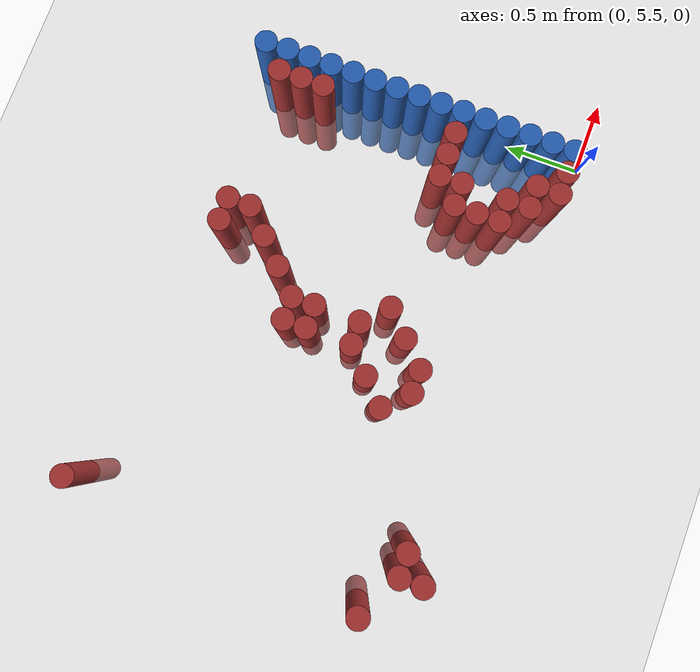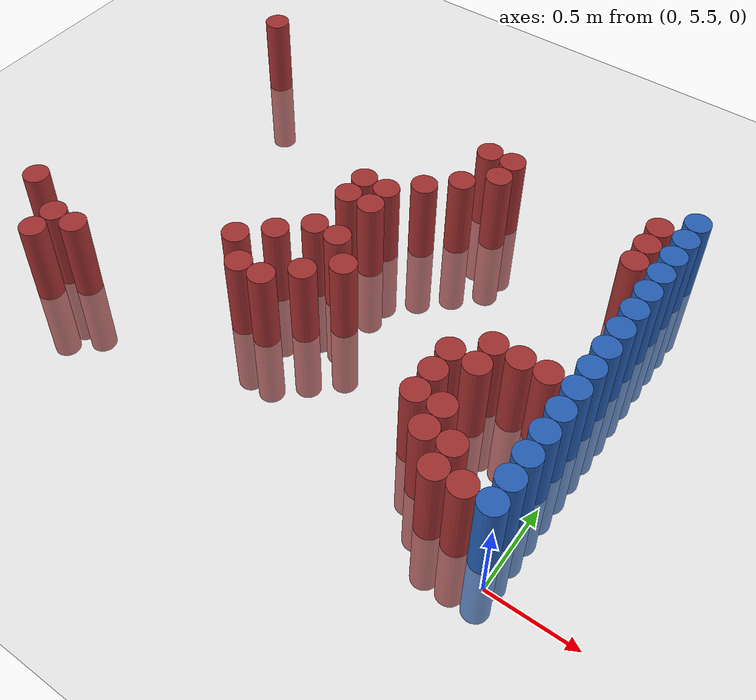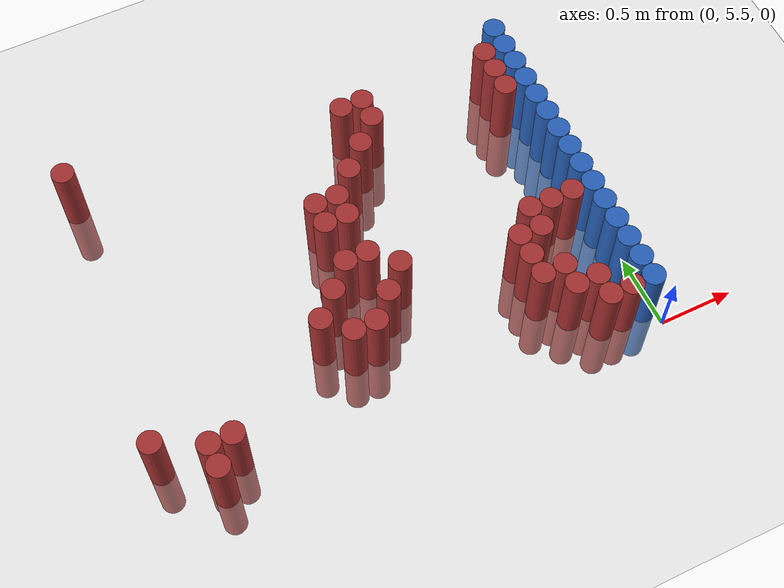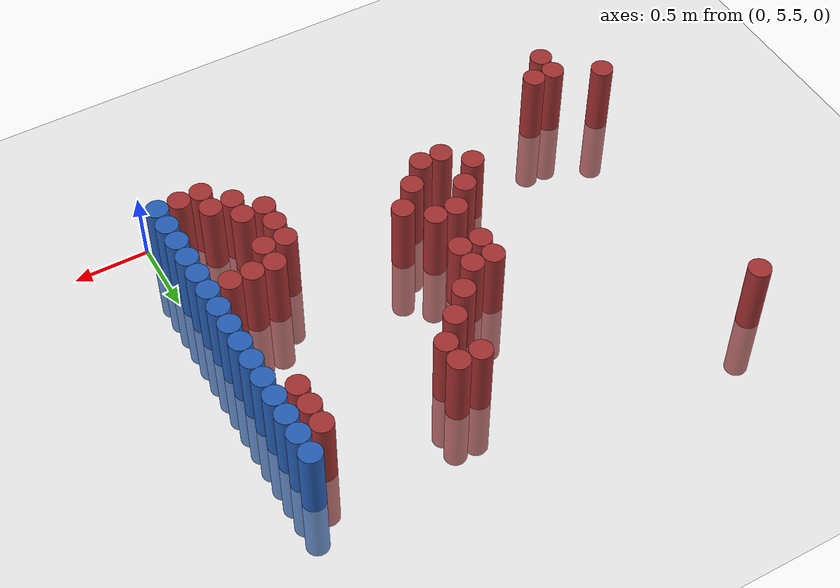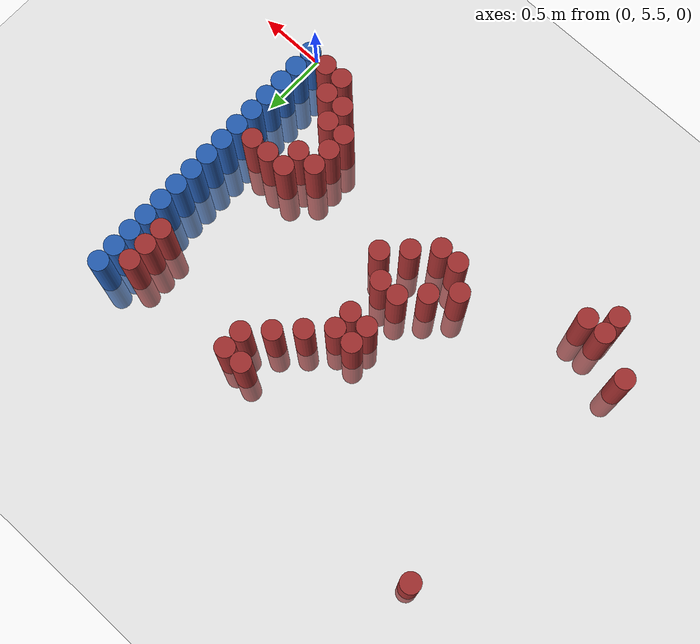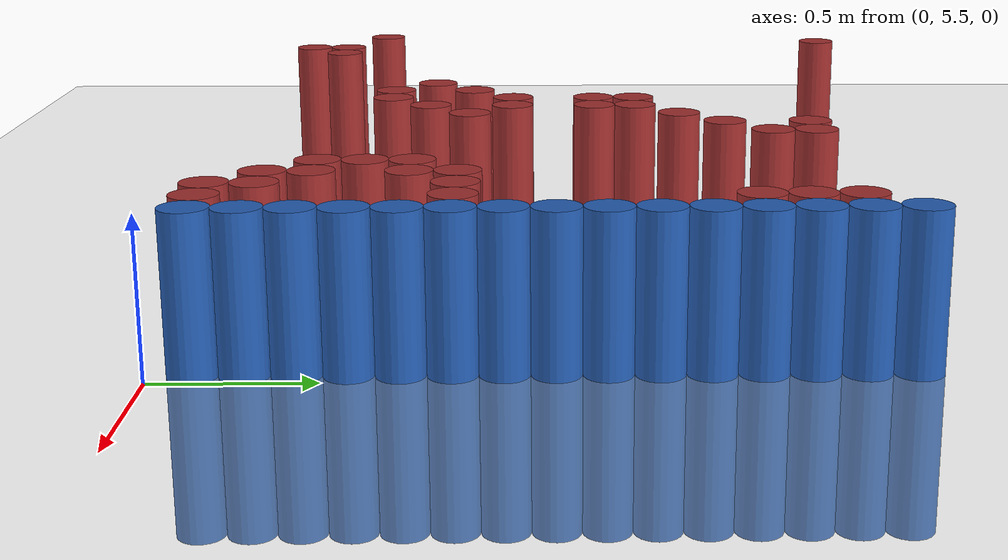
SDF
<sdf version="1.6">
 <world name="default">
  <model name="ground_plane">
   <static>1</static>
   <link name="link">
    <collision name="collision">
     <geometry><plane><normal>0 0 1</normal><size>100 100</size></plane></geometry>
     <surface><friction><ode><mu>100</mu><mu2>50</mu2></ode></friction></surface>
    </collision>
    <visual name="visual">
     <cast_shadows>0</cast_shadows>
     <geometry><plane><normal>0 0 1</normal><size>100 100</size></plane></geometry>
     <material>
      <script><uri>file://media/materials/scripts/gazebo.material</uri><name>Gazebo/Grey</name></script>
     </material>
    </visual>
   </link>
  </model>
  <model name="unit_cylinder_159">
   <static>1</static>
   <pose>-3.225000 5.925000 0.000000 0.000000 0.000000 0.000000</pose>
   <link name="link">
    <inertial>
     <mass>1</mass>
     <inertia><ixx>0.145833</ixx><ixy>0</ixy><ixz>0</ixz><iyy>0.145833</iyy><iyz>0</iyz><izz>0.125</izz></inertia>
    </inertial>
    <collision name="collision">
     <geometry><cylinder><radius>0.075000</radius><length>1</length></cylinder></geometry>
    </collision>
    <visual name="visual">
     <geometry><cylinder><radius>0.075000</radius><length>1</length></cylinder></geometry>
     <material>
      <ambient>0.648000 0.192000 0.192000 1</ambient>
      <diffuse>0.648000 0.192000 0.192000 1</diffuse>
     </material>
     <material>
      <script><name>Gazebo/Grey</name><uri>file://media/materials/scripts/gazebo.material</uri></script>
     </material>
    </visual>
   </link>
  </model>
  <model name="unit_cylinder_161">
   <static>1</static>
   <pose>-3.075000 7.875000 0.000000 0.000000 0.000000 0.000000</pose>
   <link name="link">
    <inertial>
     <mass>1</mass>
     <inertia><ixx>0.145833</ixx><ixy>0</ixy><ixz>0</ixz><iyy>0.145833</iyy><iyz>0</iyz><izz>0.125</izz></inertia>
    </inertial>
    <collision name="collision">
     <geometry><cylinder><radius>0.075000</radius><length>1</length></cylinder></geometry>
    </collision>
    <visual name="visual">
     <geometry><cylinder><radius>0.075000</radius><length>1</length></cylinder></geometry>
     <material>
      <ambient>0.648000 0.192000 0.192000 1</ambient>
      <diffuse>0.648000 0.192000 0.192000 1</diffuse>
     </material>
     <material>
      <script><name>Gazebo/Grey</name><uri>file://media/materials/scripts/gazebo.material</uri></script>
     </material>
    </visual>
   </link>
  </model>
  <model name="unit_cylinder_165">
   <static>1</static>
   <pose>-2.925000 5.625000 0.000000 0.000000 0.000000 0.000000</pose>
   <link name="link">
    <inertial>
     <mass>1</mass>
     <inertia><ixx>0.145833</ixx><ixy>0</ixy><ixz>0</ixz><iyy>0.145833</iyy><iyz>0</iyz><izz>0.125</izz></inertia>
    </inertial>
    <collision name="collision">
     <geometry><cylinder><radius>0.075000</radius><length>1</length></cylinder></geometry>
    </collision>
    <visual name="visual">
     <geometry><cylinder><radius>0.075000</radius><length>1</length></cylinder></geometry>
     <material>
      <ambient>0.648000 0.192000 0.192000 1</ambient>
      <diffuse>0.648000 0.192000 0.192000 1</diffuse>
     </material>
     <material>
      <script><name>Gazebo/Grey</name><uri>file://media/materials/scripts/gazebo.material</uri></script>
     </material>
    </visual>
   </link>
  </model>
  <model name="unit_cylinder_166">
   <static>1</static>
   <pose>-2.925000 5.775000 0.000000 0.000000 0.000000 0.000000</pose>
   <link name="link">
    <inertial>
     <mass>1</mass>
     <inertia><ixx>0.145833</ixx><ixy>0</ixy><ixz>0</ixz><iyy>0.145833</iyy><iyz>0</iyz><izz>0.125</izz></inertia>
    </inertial>
    <collision name="collision">
     <geometry><cylinder><radius>0.075000</radius><length>1</length></cylinder></geometry>
    </collision>
    <visual name="visual">
     <geometry><cylinder><radius>0.075000</radius><length>1</length></cylinder></geometry>
     <material>
      <ambient>0.648000 0.192000 0.192000 1</ambient>
      <diffuse>0.648000 0.192000 0.192000 1</diffuse>
     </material>
     <material>
      <script><name>Gazebo/Grey</name><uri>file://media/materials/scripts/gazebo.material</uri></script>
     </material>
    </visual>
   </link>
  </model>
  <model name="unit_cylinder_170">
   <static>1</static>
   <pose>-2.775000 5.775000 0.000000 0.000000 0.000000 0.000000</pose>
   <link name="link">
    <inertial>
     <mass>1</mass>
     <inertia><ixx>0.145833</ixx><ixy>0</ixy><ixz>0</ixz><iyy>0.145833</iyy><iyz>0</iyz><izz>0.125</izz></inertia>
    </inertial>
    <collision name="collision">
     <geometry><cylinder><radius>0.075000</radius><length>1</length></cylinder></geometry>
    </collision>
    <visual name="visual">
     <geometry><cylinder><radius>0.075000</radius><length>1</length></cylinder></geometry>
     <material>
      <ambient>0.648000 0.192000 0.192000 1</ambient>
      <diffuse>0.648000 0.192000 0.192000 1</diffuse>
     </material>
     <material>
      <script><name>Gazebo/Grey</name><uri>file://media/materials/scripts/gazebo.material</uri></script>
     </material>
    </visual>
   </link>
  </model>
  <model name="unit_cylinder_178">
   <static>1</static>
   <pose>-2.025000 6.225000 0.000000 0.000000 0.000000 0.000000</pose>
   <link name="link">
    <inertial>
     <mass>1</mass>
     <inertia><ixx>0.145833</ixx><ixy>0</ixy><ixz>0</ixz><iyy>0.145833</iyy><iyz>0</iyz><izz>0.125</izz></inertia>
    </inertial>
    <collision name="collision">
     <geometry><cylinder><radius>0.075000</radius><length>1</length></cylinder></geometry>
    </collision>
    <visual name="visual">
     <geometry><cylinder><radius>0.075000</radius><length>1</length></cylinder></geometry>
     <material>
      <ambient>0.648000 0.192000 0.192000 1</ambient>
      <diffuse>0.648000 0.192000 0.192000 1</diffuse>
     </material>
     <material>
      <script><name>Gazebo/Grey</name><uri>file://media/materials/scripts/gazebo.material</uri></script>
     </material>
    </visual>
   </link>
  </model>
  <model name="unit_cylinder_181">
   <static>1</static>
   <pose>-1.875000 6.075000 0.000000 0.000000 0.000000 0.000000</pose>
   <link name="link">
    <inertial>
     <mass>1</mass>
     <inertia><ixx>0.145833</ixx><ixy>0</ixy><ixz>0</ixz><iyy>0.145833</iyy><iyz>0</iyz><izz>0.125</izz></inertia>
    </inertial>
    <collision name="collision">
     <geometry><cylinder><radius>0.075000</radius><length>1</length></cylinder></geometry>
    </collision>
    <visual name="visual">
     <geometry><cylinder><radius>0.075000</radius><length>1</length></cylinder></geometry>
     <material>
      <ambient>0.648000 0.192000 0.192000 1</ambient>
      <diffuse>0.648000 0.192000 0.192000 1</diffuse>
     </material>
     <material>
      <script><name>Gazebo/Grey</name><uri>file://media/materials/scripts/gazebo.material</uri></script>
     </material>
    </visual>
   </link>
  </model>
  <model name="unit_cylinder_182">
   <static>1</static>
   <pose>-1.875000 6.375000 0.000000 0.000000 0.000000 0.000000</pose>
   <link name="link">
    <inertial>
     <mass>1</mass>
     <inertia><ixx>0.145833</ixx><ixy>0</ixy><ixz>0</ixz><iyy>0.145833</iyy><iyz>0</iyz><izz>0.125</izz></inertia>
    </inertial>
    <collision name="collision">
     <geometry><cylinder><radius>0.075000</radius><length>1</length></cylinder></geometry>
    </collision>
    <visual name="visual">
     <geometry><cylinder><radius>0.075000</radius><length>1</length></cylinder></geometry>
     <material>
      <ambient>0.648000 0.192000 0.192000 1</ambient>
      <diffuse>0.648000 0.192000 0.192000 1</diffuse>
     </material>
     <material>
      <script><name>Gazebo/Grey</name><uri>file://media/materials/scripts/gazebo.material</uri></script>
     </material>
    </visual>
   </link>
  </model>
  <model name="unit_cylinder_183">
   <static>1</static>
   <pose>-1.725000 6.075000 0.000000 0.000000 0.000000 0.000000</pose>
   <link name="link">
    <inertial>
     <mass>1</mass>
     <inertia><ixx>0.145833</ixx><ixy>0</ixy><ixz>0</ixz><iyy>0.145833</iyy><iyz>0</iyz><izz>0.125</izz></inertia>
    </inertial>
    <collision name="collision">
     <geometry><cylinder><radius>0.075000</radius><length>1</length></cylinder></geometry>
    </collision>
    <visual name="visual">
     <geometry><cylinder><radius>0.075000</radius><length>1</length></cylinder></geometry>
     <material>
      <ambient>0.648000 0.192000 0.192000 1</ambient>
      <diffuse>0.648000 0.192000 0.192000 1</diffuse>
     </material>
     <material>
      <script><name>Gazebo/Grey</name><uri>file://media/materials/scripts/gazebo.material</uri></script>
     </material>
    </visual>
   </link>
  </model>
  <model name="unit_cylinder_184">
   <static>1</static>
   <pose>-1.725000 6.525000 0.000000 0.000000 0.000000 0.000000</pose>
   <link name="link">
    <inertial>
     <mass>1</mass>
     <inertia><ixx>0.145833</ixx><ixy>0</ixy><ixz>0</ixz><iyy>0.145833</iyy><iyz>0</iyz><izz>0.125</izz></inertia>
    </inertial>
    <collision name="collision">
     <geometry><cylinder><radius>0.075000</radius><length>1</length></cylinder></geometry>
    </collision>
    <visual name="visual">
     <geometry><cylinder><radius>0.075000</radius><length>1</length></cylinder></geometry>
     <material>
      <ambient>0.648000 0.192000 0.192000 1</ambient>
      <diffuse>0.648000 0.192000 0.192000 1</diffuse>
     </material>
     <material>
      <script><name>Gazebo/Grey</name><uri>file://media/materials/scripts/gazebo.material</uri></script>
     </material>
    </visual>
   </link>
  </model>
  <model name="unit_cylinder_185">
   <static>1</static>
   <pose>-1.725000 6.825000 0.000000 0.000000 0.000000 0.000000</pose>
   <link name="link">
    <inertial>
     <mass>1</mass>
     <inertia><ixx>0.145833</ixx><ixy>0</ixy><ixz>0</ixz><iyy>0.145833</iyy><iyz>0</iyz><izz>0.125</izz></inertia>
    </inertial>
    <collision name="collision">
     <geometry><cylinder><radius>0.075000</radius><length>1</length></cylinder></geometry>
    </collision>
    <visual name="visual">
     <geometry><cylinder><radius>0.075000</radius><length>1</length></cylinder></geometry>
     <material>
      <ambient>0.648000 0.192000 0.192000 1</ambient>
      <diffuse>0.648000 0.192000 0.192000 1</diffuse>
     </material>
     <material>
      <script><name>Gazebo/Grey</name><uri>file://media/materials/scripts/gazebo.material</uri></script>
     </material>
    </visual>
   </link>
  </model>
  <model name="unit_cylinder_186">
   <static>1</static>
   <pose>-1.725000 6.975000 0.000000 0.000000 0.000000 0.000000</pose>
   <link name="link">
    <inertial>
     <mass>1</mass>
     <inertia><ixx>0.145833</ixx><ixy>0</ixy><ixz>0</ixz><iyy>0.145833</iyy><iyz>0</iyz><izz>0.125</izz></inertia>
    </inertial>
    <collision name="collision">
     <geometry><cylinder><radius>0.075000</radius><length>1</length></cylinder></geometry>
    </collision>
    <visual name="visual">
     <geometry><cylinder><radius>0.075000</radius><length>1</length></cylinder></geometry>
     <material>
      <ambient>0.648000 0.192000 0.192000 1</ambient>
      <diffuse>0.648000 0.192000 0.192000 1</diffuse>
     </material>
     <material>
      <script><name>Gazebo/Grey</name><uri>file://media/materials/scripts/gazebo.material</uri></script>
     </material>
    </visual>
   </link>
  </model>
  <model name="unit_cylinder_187">
   <static>1</static>
   <pose>-1.575000 6.225000 0.000000 0.000000 0.000000 0.000000</pose>
   <link name="link">
    <inertial>
     <mass>1</mass>
     <inertia><ixx>0.145833</ixx><ixy>0</ixy><ixz>0</ixz><iyy>0.145833</iyy><iyz>0</iyz><izz>0.125</izz></inertia>
    </inertial>
    <collision name="collision">
     <geometry><cylinder><radius>0.075000</radius><length>1</length></cylinder></geometry>
    </collision>
    <visual name="visual">
     <geometry><cylinder><radius>0.075000</radius><length>1</length></cylinder></geometry>
     <material>
      <ambient>0.648000 0.192000 0.192000 1</ambient>
      <diffuse>0.648000 0.192000 0.192000 1</diffuse>
     </material>
     <material>
      <script><name>Gazebo/Grey</name><uri>file://media/materials/scripts/gazebo.material</uri></script>
     </material>
    </visual>
   </link>
  </model>
  <model name="unit_cylinder_188">
   <static>1</static>
   <pose>-1.575000 6.525000 0.000000 0.000000 0.000000 0.000000</pose>
   <link name="link">
    <inertial>
     <mass>1</mass>
     <inertia><ixx>0.145833</ixx><ixy>0</ixy><ixz>0</ixz><iyy>0.145833</iyy><iyz>0</iyz><izz>0.125</izz></inertia>
    </inertial>
    <collision name="collision">
     <geometry><cylinder><radius>0.075000</radius><length>1</length></cylinder></geometry>
    </collision>
    <visual name="visual">
     <geometry><cylinder><radius>0.075000</radius><length>1</length></cylinder></geometry>
     <material>
      <ambient>0.648000 0.192000 0.192000 1</ambient>
      <diffuse>0.648000 0.192000 0.192000 1</diffuse>
     </material>
     <material>
      <script><name>Gazebo/Grey</name><uri>file://media/materials/scripts/gazebo.material</uri></script>
     </material>
    </visual>
   </link>
  </model>
  <model name="unit_cylinder_189">
   <static>1</static>
   <pose>-1.575000 6.825000 0.000000 0.000000 0.000000 0.000000</pose>
   <link name="link">
    <inertial>
     <mass>1</mass>
     <inertia><ixx>0.145833</ixx><ixy>0</ixy><ixz>0</ixz><iyy>0.145833</iyy><iyz>0</iyz><izz>0.125</izz></inertia>
    </inertial>
    <collision name="collision">
     <geometry><cylinder><radius>0.075000</radius><length>1</length></cylinder></geometry>
    </collision>
    <visual name="visual">
     <geometry><cylinder><radius>0.075000</radius><length>1</length></cylinder></geometry>
     <material>
      <ambient>0.648000 0.192000 0.192000 1</ambient>
      <diffuse>0.648000 0.192000 0.192000 1</diffuse>
     </material>
     <material>
      <script><name>Gazebo/Grey</name><uri>file://media/materials/scripts/gazebo.material</uri></script>
     </material>
    </visual>
   </link>
  </model>
  <model name="unit_cylinder_190">
   <static>1</static>
   <pose>-1.575000 6.975000 0.000000 0.000000 0.000000 0.000000</pose>
   <link name="link">
    <inertial>
     <mass>1</mass>
     <inertia><ixx>0.145833</ixx><ixy>0</ixy><ixz>0</ixz><iyy>0.145833</iyy><iyz>0</iyz><izz>0.125</izz></inertia>
    </inertial>
    <collision name="collision">
     <geometry><cylinder><radius>0.075000</radius><length>1</length></cylinder></geometry>
    </collision>
    <visual name="visual">
     <geometry><cylinder><radius>0.075000</radius><length>1</length></cylinder></geometry>
     <material>
      <ambient>0.648000 0.192000 0.192000 1</ambient>
      <diffuse>0.648000 0.192000 0.192000 1</diffuse>
     </material>
     <material>
      <script><name>Gazebo/Grey</name><uri>file://media/materials/scripts/gazebo.material</uri></script>
     </material>
    </visual>
   </link>
  </model>
  <model name="unit_cylinder_191">
   <static>1</static>
   <pose>-1.425000 6.375000 0.000000 0.000000 0.000000 0.000000</pose>
   <link name="link">
    <inertial>
     <mass>1</mass>
     <inertia><ixx>0.145833</ixx><ixy>0</ixy><ixz>0</ixz><iyy>0.145833</iyy><iyz>0</iyz><izz>0.125</izz></inertia>
    </inertial>
    <collision name="collision">
     <geometry><cylinder><radius>0.075000</radius><length>1</length></cylinder></geometry>
    </collision>
    <visual name="visual">
     <geometry><cylinder><radius>0.075000</radius><length>1</length></cylinder></geometry>
     <material>
      <ambient>0.648000 0.192000 0.192000 1</ambient>
      <diffuse>0.648000 0.192000 0.192000 1</diffuse>
     </material>
     <material>
      <script><name>Gazebo/Grey</name><uri>file://media/materials/scripts/gazebo.material</uri></script>
     </material>
    </visual>
   </link>
  </model>
  <model name="unit_cylinder_192">
   <static>1</static>
   <pose>-1.425000 7.125000 0.000000 0.000000 0.000000 0.000000</pose>
   <link name="link">
    <inertial>
     <mass>1</mass>
     <inertia><ixx>0.145833</ixx><ixy>0</ixy><ixz>0</ixz><iyy>0.145833</iyy><iyz>0</iyz><izz>0.125</izz></inertia>
    </inertial>
    <collision name="collision">
     <geometry><cylinder><radius>0.075000</radius><length>1</length></cylinder></geometry>
    </collision>
    <visual name="visual">
     <geometry><cylinder><radius>0.075000</radius><length>1</length></cylinder></geometry>
     <material>
      <ambient>0.648000 0.192000 0.192000 1</ambient>
      <diffuse>0.648000 0.192000 0.192000 1</diffuse>
     </material>
     <material>
      <script><name>Gazebo/Grey</name><uri>file://media/materials/scripts/gazebo.material</uri></script>
     </material>
    </visual>
   </link>
  </model>
  <model name="unit_cylinder_193">
   <static>1</static>
   <pose>-1.275000 7.275000 0.000000 0.000000 0.000000 0.000000</pose>
   <link name="link">
    <inertial>
     <mass>1</mass>
     <inertia><ixx>0.145833</ixx><ixy>0</ixy><ixz>0</ixz><iyy>0.145833</iyy><iyz>0</iyz><izz>0.125</izz></inertia>
    </inertial>
    <collision name="collision">
     <geometry><cylinder><radius>0.075000</radius><length>1</length></cylinder></geometry>
    </collision>
    <visual name="visual">
     <geometry><cylinder><radius>0.075000</radius><length>1</length></cylinder></geometry>
     <material>
      <ambient>0.648000 0.192000 0.192000 1</ambient>
      <diffuse>0.648000 0.192000 0.192000 1</diffuse>
     </material>
     <material>
      <script><name>Gazebo/Grey</name><uri>file://media/materials/scripts/gazebo.material</uri></script>
     </material>
    </visual>
   </link>
  </model>
  <model name="unit_cylinder_194">
   <static>1</static>
   <pose>-1.275000 7.575000 0.000000 0.000000 0.000000 0.000000</pose>
   <link name="link">
    <inertial>
     <mass>1</mass>
     <inertia><ixx>0.145833</ixx><ixy>0</ixy><ixz>0</ixz><iyy>0.145833</iyy><iyz>0</iyz><izz>0.125</izz></inertia>
    </inertial>
    <collision name="collision">
     <geometry><cylinder><radius>0.075000</radius><length>1</length></cylinder></geometry>
    </collision>
    <visual name="visual">
     <geometry><cylinder><radius>0.075000</radius><length>1</length></cylinder></geometry>
     <material>
      <ambient>0.648000 0.192000 0.192000 1</ambient>
      <diffuse>0.648000 0.192000 0.192000 1</diffuse>
     </material>
     <material>
      <script><name>Gazebo/Grey</name><uri>file://media/materials/scripts/gazebo.material</uri></script>
     </material>
    </visual>
   </link>
  </model>
  <model name="unit_cylinder_195">
   <static>1</static>
   <pose>-1.125000 7.425000 0.000000 0.000000 0.000000 0.000000</pose>
   <link name="link">
    <inertial>
     <mass>1</mass>
     <inertia><ixx>0.145833</ixx><ixy>0</ixy><ixz>0</ixz><iyy>0.145833</iyy><iyz>0</iyz><izz>0.125</izz></inertia>
    </inertial>
    <collision name="collision">
     <geometry><cylinder><radius>0.075000</radius><length>1</length></cylinder></geometry>
    </collision>
    <visual name="visual">
     <geometry><cylinder><radius>0.075000</radius><length>1</length></cylinder></geometry>
     <material>
      <ambient>0.648000 0.192000 0.192000 1</ambient>
      <diffuse>0.648000 0.192000 0.192000 1</diffuse>
     </material>
     <material>
      <script><name>Gazebo/Grey</name><uri>file://media/materials/scripts/gazebo.material</uri></script>
     </material>
    </visual>
   </link>
  </model>
  <model name="unit_cylinder_196">
   <static>1</static>
   <pose>-1.125000 7.575000 0.000000 0.000000 0.000000 0.000000</pose>
   <link name="link">
    <inertial>
     <mass>1</mass>
     <inertia><ixx>0.145833</ixx><ixy>0</ixy><ixz>0</ixz><iyy>0.145833</iyy><iyz>0</iyz><izz>0.125</izz></inertia>
    </inertial>
    <collision name="collision">
     <geometry><cylinder><radius>0.075000</radius><length>1</length></cylinder></geometry>
    </collision>
    <visual name="visual">
     <geometry><cylinder><radius>0.075000</radius><length>1</length></cylinder></geometry>
     <material>
      <ambient>0.648000 0.192000 0.192000 1</ambient>
      <diffuse>0.648000 0.192000 0.192000 1</diffuse>
     </material>
     <material>
      <script><name>Gazebo/Grey</name><uri>file://media/materials/scripts/gazebo.material</uri></script>
     </material>
    </visual>
   </link>
  </model>
  <model name="unit_cylinder_204">
   <static>1</static>
   <pose>-0.675000 5.925000 0.000000 0.000000 0.000000 0.000000</pose>
   <link name="link">
    <inertial>
     <mass>1</mass>
     <inertia><ixx>0.145833</ixx><ixy>0</ixy><ixz>0</ixz><iyy>0.145833</iyy><iyz>0</iyz><izz>0.125</izz></inertia>
    </inertial>
    <collision name="collision">
     <geometry><cylinder><radius>0.075000</radius><length>1</length></cylinder></geometry>
    </collision>
    <visual name="visual">
     <geometry><cylinder><radius>0.075000</radius><length>1</length></cylinder></geometry>
     <material>
      <ambient>0.648000 0.192000 0.192000 1</ambient>
      <diffuse>0.648000 0.192000 0.192000 1</diffuse>
     </material>
     <material>
      <script><name>Gazebo/Grey</name><uri>file://media/materials/scripts/gazebo.material</uri></script>
     </material>
    </visual>
   </link>
  </model>
  <model name="unit_cylinder_205">
   <static>1</static>
   <pose>-0.675000 6.075000 0.000000 0.000000 0.000000 0.000000</pose>
   <link name="link">
    <inertial>
     <mass>1</mass>
     <inertia><ixx>0.145833</ixx><ixy>0</ixy><ixz>0</ixz><iyy>0.145833</iyy><iyz>0</iyz><izz>0.125</izz></inertia>
    </inertial>
    <collision name="collision">
     <geometry><cylinder><radius>0.075000</radius><length>1</length></cylinder></geometry>
    </collision>
    <visual name="visual">
     <geometry><cylinder><radius>0.075000</radius><length>1</length></cylinder></geometry>
     <material>
      <ambient>0.648000 0.192000 0.192000 1</ambient>
      <diffuse>0.648000 0.192000 0.192000 1</diffuse>
     </material>
     <material>
      <script><name>Gazebo/Grey</name><uri>file://media/materials/scripts/gazebo.material</uri></script>
     </material>
    </visual>
   </link>
  </model>
  <model name="unit_cylinder_206">
   <static>1</static>
   <pose>-0.675000 6.225000 0.000000 0.000000 0.000000 0.000000</pose>
   <link name="link">
    <inertial>
     <mass>1</mass>
     <inertia><ixx>0.145833</ixx><ixy>0</ixy><ixz>0</ixz><iyy>0.145833</iyy><iyz>0</iyz><izz>0.125</izz></inertia>
    </inertial>
    <collision name="collision">
     <geometry><cylinder><radius>0.075000</radius><length>1</length></cylinder></geometry>
    </collision>
    <visual name="visual">
     <geometry><cylinder><radius>0.075000</radius><length>1</length></cylinder></geometry>
     <material>
      <ambient>0.648000 0.192000 0.192000 1</ambient>
      <diffuse>0.648000 0.192000 0.192000 1</diffuse>
     </material>
     <material>
      <script><name>Gazebo/Grey</name><uri>file://media/materials/scripts/gazebo.material</uri></script>
     </material>
    </visual>
   </link>
  </model>
  <model name="unit_cylinder_209">
   <static>1</static>
   <pose>-0.525000 5.775000 0.000000 0.000000 0.000000 0.000000</pose>
   <link name="link">
    <inertial>
     <mass>1</mass>
     <inertia><ixx>0.145833</ixx><ixy>0</ixy><ixz>0</ixz><iyy>0.145833</iyy><iyz>0</iyz><izz>0.125</izz></inertia>
    </inertial>
    <collision name="collision">
     <geometry><cylinder><radius>0.075000</radius><length>1</length></cylinder></geometry>
    </collision>
    <visual name="visual">
     <geometry><cylinder><radius>0.075000</radius><length>1</length></cylinder></geometry>
     <material>
      <ambient>0.648000 0.192000 0.192000 1</ambient>
      <diffuse>0.648000 0.192000 0.192000 1</diffuse>
     </material>
     <material>
      <script><name>Gazebo/Grey</name><uri>file://media/materials/scripts/gazebo.material</uri></script>
     </material>
    </visual>
   </link>
  </model>
  <model name="unit_cylinder_210">
   <static>1</static>
   <pose>-0.525000 5.925000 0.000000 0.000000 0.000000 0.000000</pose>
   <link name="link">
    <inertial>
     <mass>1</mass>
     <inertia><ixx>0.145833</ixx><ixy>0</ixy><ixz>0</ixz><iyy>0.145833</iyy><iyz>0</iyz><izz>0.125</izz></inertia>
    </inertial>
    <collision name="collision">
     <geometry><cylinder><radius>0.075000</radius><length>1</length></cylinder></geometry>
    </collision>
    <visual name="visual">
     <geometry><cylinder><radius>0.075000</radius><length>1</length></cylinder></geometry>
     <material>
      <ambient>0.648000 0.192000 0.192000 1</ambient>
      <diffuse>0.648000 0.192000 0.192000 1</diffuse>
     </material>
     <material>
      <script><name>Gazebo/Grey</name><uri>file://media/materials/scripts/gazebo.material</uri></script>
     </material>
    </visual>
   </link>
  </model>
  <model name="unit_cylinder_211">
   <static>1</static>
   <pose>-0.525000 6.225000 0.000000 0.000000 0.000000 0.000000</pose>
   <link name="link">
    <inertial>
     <mass>1</mass>
     <inertia><ixx>0.145833</ixx><ixy>0</ixy><ixz>0</ixz><iyy>0.145833</iyy><iyz>0</iyz><izz>0.125</izz></inertia>
    </inertial>
    <collision name="collision">
     <geometry><cylinder><radius>0.075000</radius><length>1</length></cylinder></geometry>
    </collision>
    <visual name="visual">
     <geometry><cylinder><radius>0.075000</radius><length>1</length></cylinder></geometry>
     <material>
      <ambient>0.648000 0.192000 0.192000 1</ambient>
      <diffuse>0.648000 0.192000 0.192000 1</diffuse>
     </material>
     <material>
      <script><name>Gazebo/Grey</name><uri>file://media/materials/scripts/gazebo.material</uri></script>
     </material>
    </visual>
   </link>
  </model>
  <model name="unit_cylinder_212">
   <static>1</static>
   <pose>-0.525000 6.375000 0.000000 0.000000 0.000000 0.000000</pose>
   <link name="link">
    <inertial>
     <mass>1</mass>
     <inertia><ixx>0.145833</ixx><ixy>0</ixy><ixz>0</ixz><iyy>0.145833</iyy><iyz>0</iyz><izz>0.125</izz></inertia>
    </inertial>
    <collision name="collision">
     <geometry><cylinder><radius>0.075000</radius><length>1</length></cylinder></geometry>
    </collision>
    <visual name="visual">
     <geometry><cylinder><radius>0.075000</radius><length>1</length></cylinder></geometry>
     <material>
      <ambient>0.648000 0.192000 0.192000 1</ambient>
      <diffuse>0.648000 0.192000 0.192000 1</diffuse>
     </material>
     <material>
      <script><name>Gazebo/Grey</name><uri>file://media/materials/scripts/gazebo.material</uri></script>
     </material>
    </visual>
   </link>
  </model>
  <model name="unit_cylinder_214">
   <static>1</static>
   <pose>-0.375000 5.625000 0.000000 0.000000 0.000000 0.000000</pose>
   <link name="link">
    <inertial>
     <mass>1</mass>
     <inertia><ixx>0.145833</ixx><ixy>0</ixy><ixz>0</ixz><iyy>0.145833</iyy><iyz>0</iyz><izz>0.125</izz></inertia>
    </inertial>
    <collision name="collision">
     <geometry><cylinder><radius>0.075000</radius><length>1</length></cylinder></geometry>
    </collision>
    <visual name="visual">
     <geometry><cylinder><radius>0.075000</radius><length>1</length></cylinder></geometry>
     <material>
      <ambient>0.648000 0.192000 0.192000 1</ambient>
      <diffuse>0.648000 0.192000 0.192000 1</diffuse>
     </material>
     <material>
      <script><name>Gazebo/Grey</name><uri>file://media/materials/scripts/gazebo.material</uri></script>
     </material>
    </visual>
   </link>
  </model>
  <model name="unit_cylinder_215">
   <static>1</static>
   <pose>-0.375000 5.775000 0.000000 0.000000 0.000000 0.000000</pose>
   <link name="link">
    <inertial>
     <mass>1</mass>
     <inertia><ixx>0.145833</ixx><ixy>0</ixy><ixz>0</ixz><iyy>0.145833</iyy><iyz>0</iyz><izz>0.125</izz></inertia>
    </inertial>
    <collision name="collision">
     <geometry><cylinder><radius>0.075000</radius><length>1</length></cylinder></geometry>
    </collision>
    <visual name="visual">
     <geometry><cylinder><radius>0.075000</radius><length>1</length></cylinder></geometry>
     <material>
      <ambient>0.648000 0.192000 0.192000 1</ambient>
      <diffuse>0.648000 0.192000 0.192000 1</diffuse>
     </material>
     <material>
      <script><name>Gazebo/Grey</name><uri>file://media/materials/scripts/gazebo.material</uri></script>
     </material>
    </visual>
   </link>
  </model>
  <model name="unit_cylinder_216">
   <static>1</static>
   <pose>-0.375000 6.375000 0.000000 0.000000 0.000000 0.000000</pose>
   <link name="link">
    <inertial>
     <mass>1</mass>
     <inertia><ixx>0.145833</ixx><ixy>0</ixy><ixz>0</ixz><iyy>0.145833</iyy><iyz>0</iyz><izz>0.125</izz></inertia>
    </inertial>
    <collision name="collision">
     <geometry><cylinder><radius>0.075000</radius><length>1</length></cylinder></geometry>
    </collision>
    <visual name="visual">
     <geometry><cylinder><radius>0.075000</radius><length>1</length></cylinder></geometry>
     <material>
      <ambient>0.648000 0.192000 0.192000 1</ambient>
      <diffuse>0.648000 0.192000 0.192000 1</diffuse>
     </material>
     <material>
      <script><name>Gazebo/Grey</name><uri>file://media/materials/scripts/gazebo.material</uri></script>
     </material>
    </visual>
   </link>
  </model>
  <model name="unit_cylinder_222">
   <static>1</static>
   <pose>-0.225000 5.625000 0.000000 0.000000 0.000000 0.000000</pose>
   <link name="link">
    <inertial>
     <mass>1</mass>
     <inertia><ixx>0.145833</ixx><ixy>0</ixy><ixz>0</ixz><iyy>0.145833</iyy><iyz>0</iyz><izz>0.125</izz></inertia>
    </inertial>
    <collision name="collision">
     <geometry><cylinder><radius>0.075000</radius><length>1</length></cylinder></geometry>
    </collision>
    <visual name="visual">
     <geometry><cylinder><radius>0.075000</radius><length>1</length></cylinder></geometry>
     <material>
      <ambient>0.648000 0.192000 0.192000 1</ambient>
      <diffuse>0.648000 0.192000 0.192000 1</diffuse>
     </material>
     <material>
      <script><name>Gazebo/Grey</name><uri>file://media/materials/scripts/gazebo.material</uri></script>
     </material>
    </visual>
   </link>
  </model>
  <model name="unit_cylinder_223">
   <static>1</static>
   <pose>-0.225000 6.375000 0.000000 0.000000 0.000000 0.000000</pose>
   <link name="link">
    <inertial>
     <mass>1</mass>
     <inertia><ixx>0.145833</ixx><ixy>0</ixy><ixz>0</ixz><iyy>0.145833</iyy><iyz>0</iyz><izz>0.125</izz></inertia>
    </inertial>
    <collision name="collision">
     <geometry><cylinder><radius>0.075000</radius><length>1</length></cylinder></geometry>
    </collision>
    <visual name="visual">
     <geometry><cylinder><radius>0.075000</radius><length>1</length></cylinder></geometry>
     <material>
      <ambient>0.648000 0.192000 0.192000 1</ambient>
      <diffuse>0.648000 0.192000 0.192000 1</diffuse>
     </material>
     <material>
      <script><name>Gazebo/Grey</name><uri>file://media/materials/scripts/gazebo.material</uri></script>
     </material>
    </visual>
   </link>
  </model>
  <model name="unit_cylinder_224">
   <static>1</static>
   <pose>-0.225000 7.275000 0.000000 0.000000 0.000000 0.000000</pose>
   <link name="link">
    <inertial>
     <mass>1</mass>
     <inertia><ixx>0.145833</ixx><ixy>0</ixy><ixz>0</ixz><iyy>0.145833</iyy><iyz>0</iyz><izz>0.125</izz></inertia>
    </inertial>
    <collision name="collision">
     <geometry><cylinder><radius>0.075000</radius><length>1</length></cylinder></geometry>
    </collision>
    <visual name="visual">
     <geometry><cylinder><radius>0.075000</radius><length>1</length></cylinder></geometry>
     <material>
      <ambient>0.648000 0.192000 0.192000 1</ambient>
      <diffuse>0.648000 0.192000 0.192000 1</diffuse>
     </material>
     <material>
      <script><name>Gazebo/Grey</name><uri>file://media/materials/scripts/gazebo.material</uri></script>
     </material>
    </visual>
   </link>
  </model>
  <model name="unit_cylinder_225">
   <static>1</static>
   <pose>-0.225000 7.425000 0.000000 0.000000 0.000000 0.000000</pose>
   <link name="link">
    <inertial>
     <mass>1</mass>
     <inertia><ixx>0.145833</ixx><ixy>0</ixy><ixz>0</ixz><iyy>0.145833</iyy><iyz>0</iyz><izz>0.125</izz></inertia>
    </inertial>
    <collision name="collision">
     <geometry><cylinder><radius>0.075000</radius><length>1</length></cylinder></geometry>
    </collision>
    <visual name="visual">
     <geometry><cylinder><radius>0.075000</radius><length>1</length></cylinder></geometry>
     <material>
      <ambient>0.648000 0.192000 0.192000 1</ambient>
      <diffuse>0.648000 0.192000 0.192000 1</diffuse>
     </material>
     <material>
      <script><name>Gazebo/Grey</name><uri>file://media/materials/scripts/gazebo.material</uri></script>
     </material>
    </visual>
   </link>
  </model>
  <model name="unit_cylinder_226">
   <static>1</static>
   <pose>-0.225000 7.575000 0.000000 0.000000 0.000000 0.000000</pose>
   <link name="link">
    <inertial>
     <mass>1</mass>
     <inertia><ixx>0.145833</ixx><ixy>0</ixy><ixz>0</ixz><iyy>0.145833</iyy><iyz>0</iyz><izz>0.125</izz></inertia>
    </inertial>
    <collision name="collision">
     <geometry><cylinder><radius>0.075000</radius><length>1</length></cylinder></geometry>
    </collision>
    <visual name="visual">
     <geometry><cylinder><radius>0.075000</radius><length>1</length></cylinder></geometry>
     <material>
      <ambient>0.648000 0.192000 0.192000 1</ambient>
      <diffuse>0.648000 0.192000 0.192000 1</diffuse>
     </material>
     <material>
      <script><name>Gazebo/Grey</name><uri>file://media/materials/scripts/gazebo.material</uri></script>
     </material>
    </visual>
   </link>
  </model>
  <model name="unit_cylinder_234">
   <static>1</static>
   <pose>-0.075000 5.625000 0.000000 0.000000 0.000000 0.000000</pose>
   <link name="link">
    <inertial>
     <mass>1</mass>
     <inertia><ixx>0.145833</ixx><ixy>0</ixy><ixz>0</ixz><iyy>0.145833</iyy><iyz>0</iyz><izz>0.125</izz></inertia>
    </inertial>
    <collision name="collision">
     <geometry><cylinder><radius>0.075000</radius><length>1</length></cylinder></geometry>
    </collision>
    <visual name="visual">
     <geometry><cylinder><radius>0.075000</radius><length>1</length></cylinder></geometry>
     <material>
      <ambient>0.152000 0.379000 0.720000 1</ambient>
      <diffuse>0.152000 0.379000 0.720000 1</diffuse>
     </material>
     <material>
      <script><name>Gazebo/Grey</name><uri>file://media/materials/scripts/gazebo.material</uri></script>
     </material>
    </visual>
   </link>
  </model>
  <model name="unit_cylinder_235">
   <static>1</static>
   <pose>-0.075000 5.775000 0.000000 0.000000 0.000000 0.000000</pose>
   <link name="link">
    <inertial>
     <mass>1</mass>
     <inertia><ixx>0.145833</ixx><ixy>0</ixy><ixz>0</ixz><iyy>0.145833</iyy><iyz>0</iyz><izz>0.125</izz></inertia>
    </inertial>
    <collision name="collision">
     <geometry><cylinder><radius>0.075000</radius><length>1</length></cylinder></geometry>
    </collision>
    <visual name="visual">
     <geometry><cylinder><radius>0.075000</radius><length>1</length></cylinder></geometry>
     <material>
      <ambient>0.152000 0.379000 0.720000 1</ambient>
      <diffuse>0.152000 0.379000 0.720000 1</diffuse>
     </material>
     <material>
      <script><name>Gazebo/Grey</name><uri>file://media/materials/scripts/gazebo.material</uri></script>
     </material>
    </visual>
   </link>
  </model>
  <model name="unit_cylinder_236">
   <static>1</static>
   <pose>-0.075000 5.925000 0.000000 0.000000 0.000000 0.000000</pose>
   <link name="link">
    <inertial>
     <mass>1</mass>
     <inertia><ixx>0.145833</ixx><ixy>0</ixy><ixz>0</ixz><iyy>0.145833</iyy><iyz>0</iyz><izz>0.125</izz></inertia>
    </inertial>
    <collision name="collision">
     <geometry><cylinder><radius>0.075000</radius><length>1</length></cylinder></geometry>
    </collision>
    <visual name="visual">
     <geometry><cylinder><radius>0.075000</radius><length>1</length></cylinder></geometry>
     <material>
      <ambient>0.152000 0.379000 0.720000 1</ambient>
      <diffuse>0.152000 0.379000 0.720000 1</diffuse>
     </material>
     <material>
      <script><name>Gazebo/Grey</name><uri>file://media/materials/scripts/gazebo.material</uri></script>
     </material>
    </visual>
   </link>
  </model>
  <model name="unit_cylinder_237">
   <static>1</static>
   <pose>-0.075000 6.075000 0.000000 0.000000 0.000000 0.000000</pose>
   <link name="link">
    <inertial>
     <mass>1</mass>
     <inertia><ixx>0.145833</ixx><ixy>0</ixy><ixz>0</ixz><iyy>0.145833</iyy><iyz>0</iyz><izz>0.125</izz></inertia>
    </inertial>
    <collision name="collision">
     <geometry><cylinder><radius>0.075000</radius><length>1</length></cylinder></geometry>
    </collision>
    <visual name="visual">
     <geometry><cylinder><radius>0.075000</radius><length>1</length></cylinder></geometry>
     <material>
      <ambient>0.152000 0.379000 0.720000 1</ambient>
      <diffuse>0.152000 0.379000 0.720000 1</diffuse>
     </material>
     <material>
      <script><name>Gazebo/Grey</name><uri>file://media/materials/scripts/gazebo.material</uri></script>
     </material>
    </visual>
   </link>
  </model>
  <model name="unit_cylinder_238">
   <static>1</static>
   <pose>-0.075000 6.225000 0.000000 0.000000 0.000000 0.000000</pose>
   <link name="link">
    <inertial>
     <mass>1</mass>
     <inertia><ixx>0.145833</ixx><ixy>0</ixy><ixz>0</ixz><iyy>0.145833</iyy><iyz>0</iyz><izz>0.125</izz></inertia>
    </inertial>
    <collision name="collision">
     <geometry><cylinder><radius>0.075000</radius><length>1</length></cylinder></geometry>
    </collision>
    <visual name="visual">
     <geometry><cylinder><radius>0.075000</radius><length>1</length></cylinder></geometry>
     <material>
      <ambient>0.152000 0.379000 0.720000 1</ambient>
      <diffuse>0.152000 0.379000 0.720000 1</diffuse>
     </material>
     <material>
      <script><name>Gazebo/Grey</name><uri>file://media/materials/scripts/gazebo.material</uri></script>
     </material>
    </visual>
   </link>
  </model>
  <model name="unit_cylinder_239">
   <static>1</static>
   <pose>-0.075000 6.375000 0.000000 0.000000 0.000000 0.000000</pose>
   <link name="link">
    <inertial>
     <mass>1</mass>
     <inertia><ixx>0.145833</ixx><ixy>0</ixy><ixz>0</ixz><iyy>0.145833</iyy><iyz>0</iyz><izz>0.125</izz></inertia>
    </inertial>
    <collision name="collision">
     <geometry><cylinder><radius>0.075000</radius><length>1</length></cylinder></geometry>
    </collision>
    <visual name="visual">
     <geometry><cylinder><radius>0.075000</radius><length>1</length></cylinder></geometry>
     <material>
      <ambient>0.152000 0.379000 0.720000 1</ambient>
      <diffuse>0.152000 0.379000 0.720000 1</diffuse>
     </material>
     <material>
      <script><name>Gazebo/Grey</name><uri>file://media/materials/scripts/gazebo.material</uri></script>
     </material>
    </visual>
   </link>
  </model>
  <model name="unit_cylinder_240">
   <static>1</static>
   <pose>-0.075000 6.525000 0.000000 0.000000 0.000000 0.000000</pose>
   <link name="link">
    <inertial>
     <mass>1</mass>
     <inertia><ixx>0.145833</ixx><ixy>0</ixy><ixz>0</ixz><iyy>0.145833</iyy><iyz>0</iyz><izz>0.125</izz></inertia>
    </inertial>
    <collision name="collision">
     <geometry><cylinder><radius>0.075000</radius><length>1</length></cylinder></geometry>
    </collision>
    <visual name="visual">
     <geometry><cylinder><radius>0.075000</radius><length>1</length></cylinder></geometry>
     <material>
      <ambient>0.152000 0.379000 0.720000 1</ambient>
      <diffuse>0.152000 0.379000 0.720000 1</diffuse>
     </material>
     <material>
      <script><name>Gazebo/Grey</name><uri>file://media/materials/scripts/gazebo.material</uri></script>
     </material>
    </visual>
   </link>
  </model>
  <model name="unit_cylinder_241">
   <static>1</static>
   <pose>-0.075000 6.675000 0.000000 0.000000 0.000000 0.000000</pose>
   <link name="link">
    <inertial>
     <mass>1</mass>
     <inertia><ixx>0.145833</ixx><ixy>0</ixy><ixz>0</ixz><iyy>0.145833</iyy><iyz>0</iyz><izz>0.125</izz></inertia>
    </inertial>
    <collision name="collision">
     <geometry><cylinder><radius>0.075000</radius><length>1</length></cylinder></geometry>
    </collision>
    <visual name="visual">
     <geometry><cylinder><radius>0.075000</radius><length>1</length></cylinder></geometry>
     <material>
      <ambient>0.152000 0.379000 0.720000 1</ambient>
      <diffuse>0.152000 0.379000 0.720000 1</diffuse>
     </material>
     <material>
      <script><name>Gazebo/Grey</name><uri>file://media/materials/scripts/gazebo.material</uri></script>
     </material>
    </visual>
   </link>
  </model>
  <model name="unit_cylinder_242">
   <static>1</static>
   <pose>-0.075000 6.825000 0.000000 0.000000 0.000000 0.000000</pose>
   <link name="link">
    <inertial>
     <mass>1</mass>
     <inertia><ixx>0.145833</ixx><ixy>0</ixy><ixz>0</ixz><iyy>0.145833</iyy><iyz>0</iyz><izz>0.125</izz></inertia>
    </inertial>
    <collision name="collision">
     <geometry><cylinder><radius>0.075000</radius><length>1</length></cylinder></geometry>
    </collision>
    <visual name="visual">
     <geometry><cylinder><radius>0.075000</radius><length>1</length></cylinder></geometry>
     <material>
      <ambient>0.152000 0.379000 0.720000 1</ambient>
      <diffuse>0.152000 0.379000 0.720000 1</diffuse>
     </material>
     <material>
      <script><name>Gazebo/Grey</name><uri>file://media/materials/scripts/gazebo.material</uri></script>
     </material>
    </visual>
   </link>
  </model>
  <model name="unit_cylinder_243">
   <static>1</static>
   <pose>-0.075000 6.975000 0.000000 0.000000 0.000000 0.000000</pose>
   <link name="link">
    <inertial>
     <mass>1</mass>
     <inertia><ixx>0.145833</ixx><ixy>0</ixy><ixz>0</ixz><iyy>0.145833</iyy><iyz>0</iyz><izz>0.125</izz></inertia>
    </inertial>
    <collision name="collision">
     <geometry><cylinder><radius>0.075000</radius><length>1</length></cylinder></geometry>
    </collision>
    <visual name="visual">
     <geometry><cylinder><radius>0.075000</radius><length>1</length></cylinder></geometry>
     <material>
      <ambient>0.152000 0.379000 0.720000 1</ambient>
      <diffuse>0.152000 0.379000 0.720000 1</diffuse>
     </material>
     <material>
      <script><name>Gazebo/Grey</name><uri>file://media/materials/scripts/gazebo.material</uri></script>
     </material>
    </visual>
   </link>
  </model>
  <model name="unit_cylinder_244">
   <static>1</static>
   <pose>-0.075000 7.125000 0.000000 0.000000 0.000000 0.000000</pose>
   <link name="link">
    <inertial>
     <mass>1</mass>
     <inertia><ixx>0.145833</ixx><ixy>0</ixy><ixz>0</ixz><iyy>0.145833</iyy><iyz>0</iyz><izz>0.125</izz></inertia>
    </inertial>
    <collision name="collision">
     <geometry><cylinder><radius>0.075000</radius><length>1</length></cylinder></geometry>
    </collision>
    <visual name="visual">
     <geometry><cylinder><radius>0.075000</radius><length>1</length></cylinder></geometry>
     <material>
      <ambient>0.152000 0.379000 0.720000 1</ambient>
      <diffuse>0.152000 0.379000 0.720000 1</diffuse>
     </material>
     <material>
      <script><name>Gazebo/Grey</name><uri>file://media/materials/scripts/gazebo.material</uri></script>
     </material>
    </visual>
   </link>
  </model>
  <model name="unit_cylinder_245">
   <static>1</static>
   <pose>-0.075000 7.275000 0.000000 0.000000 0.000000 0.000000</pose>
   <link name="link">
    <inertial>
     <mass>1</mass>
     <inertia><ixx>0.145833</ixx><ixy>0</ixy><ixz>0</ixz><iyy>0.145833</iyy><iyz>0</iyz><izz>0.125</izz></inertia>
    </inertial>
    <collision name="collision">
     <geometry><cylinder><radius>0.075000</radius><length>1</length></cylinder></geometry>
    </collision>
    <visual name="visual">
     <geometry><cylinder><radius>0.075000</radius><length>1</length></cylinder></geometry>
     <material>
      <ambient>0.152000 0.379000 0.720000 1</ambient>
      <diffuse>0.152000 0.379000 0.720000 1</diffuse>
     </material>
     <material>
      <script><name>Gazebo/Grey</name><uri>file://media/materials/scripts/gazebo.material</uri></script>
     </material>
    </visual>
   </link>
  </model>
  <model name="unit_cylinder_246">
   <static>1</static>
   <pose>-0.075000 7.425000 0.000000 0.000000 0.000000 0.000000</pose>
   <link name="link">
    <inertial>
     <mass>1</mass>
     <inertia><ixx>0.145833</ixx><ixy>0</ixy><ixz>0</ixz><iyy>0.145833</iyy><iyz>0</iyz><izz>0.125</izz></inertia>
    </inertial>
    <collision name="collision">
     <geometry><cylinder><radius>0.075000</radius><length>1</length></cylinder></geometry>
    </collision>
    <visual name="visual">
     <geometry><cylinder><radius>0.075000</radius><length>1</length></cylinder></geometry>
     <material>
      <ambient>0.152000 0.379000 0.720000 1</ambient>
      <diffuse>0.152000 0.379000 0.720000 1</diffuse>
     </material>
     <material>
      <script><name>Gazebo/Grey</name><uri>file://media/materials/scripts/gazebo.material</uri></script>
     </material>
    </visual>
   </link>
  </model>
  <model name="unit_cylinder_247">
   <static>1</static>
   <pose>-0.075000 7.575000 0.000000 0.000000 0.000000 0.000000</pose>
   <link name="link">
    <inertial>
     <mass>1</mass>
     <inertia><ixx>0.145833</ixx><ixy>0</ixy><ixz>0</ixz><iyy>0.145833</iyy><iyz>0</iyz><izz>0.125</izz></inertia>
    </inertial>
    <collision name="collision">
     <geometry><cylinder><radius>0.075000</radius><length>1</length></cylinder></geometry>
    </collision>
    <visual name="visual">
     <geometry><cylinder><radius>0.075000</radius><length>1</length></cylinder></geometry>
     <material>
      <ambient>0.152000 0.379000 0.720000 1</ambient>
      <diffuse>0.152000 0.379000 0.720000 1</diffuse>
     </material>
     <material>
      <script><name>Gazebo/Grey</name><uri>file://media/materials/scripts/gazebo.material</uri></script>
     </material>
    </visual>
   </link>
  </model>
  <model name="unit_cylinder_248">
   <static>1</static>
   <pose>-0.075000 7.725000 0.000000 0.000000 0.000000 0.000000</pose>
   <link name="link">
    <inertial>
     <mass>1</mass>
     <inertia><ixx>0.145833</ixx><ixy>0</ixy><ixz>0</ixz><iyy>0.145833</iyy><iyz>0</iyz><izz>0.125</izz></inertia>
    </inertial>
    <collision name="collision">
     <geometry><cylinder><radius>0.075000</radius><length>1</length></cylinder></geometry>
    </collision>
    <visual name="visual">
     <geometry><cylinder><radius>0.075000</radius><length>1</length></cylinder></geometry>
     <material>
      <ambient>0.152000 0.379000 0.720000 1</ambient>
      <diffuse>0.152000 0.379000 0.720000 1</diffuse>
     </material>
     <material>
      <script><name>Gazebo/Grey</name><uri>file://media/materials/scripts/gazebo.material</uri></script>
     </material>
    </visual>
   </link>
  </model>
 </world>
</sdf>
